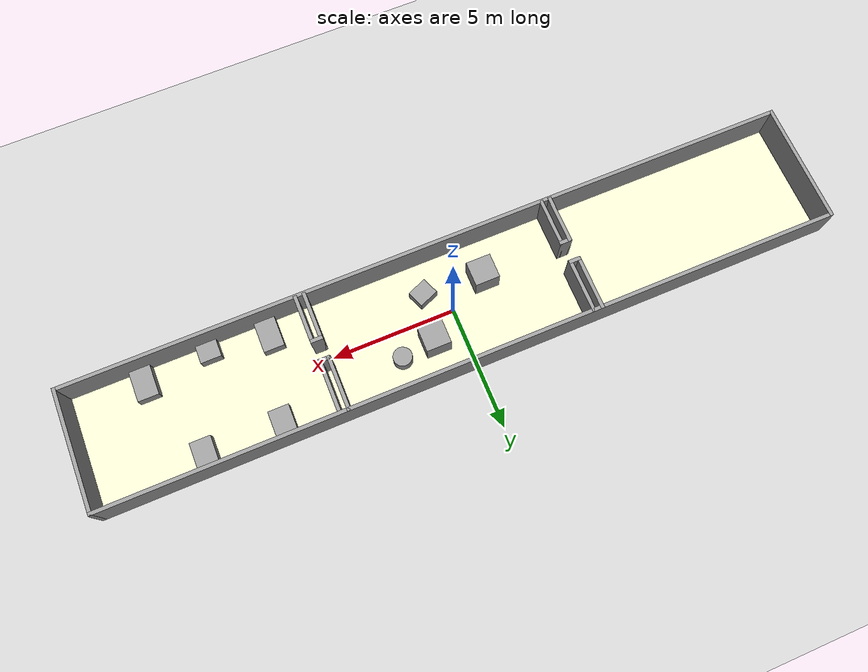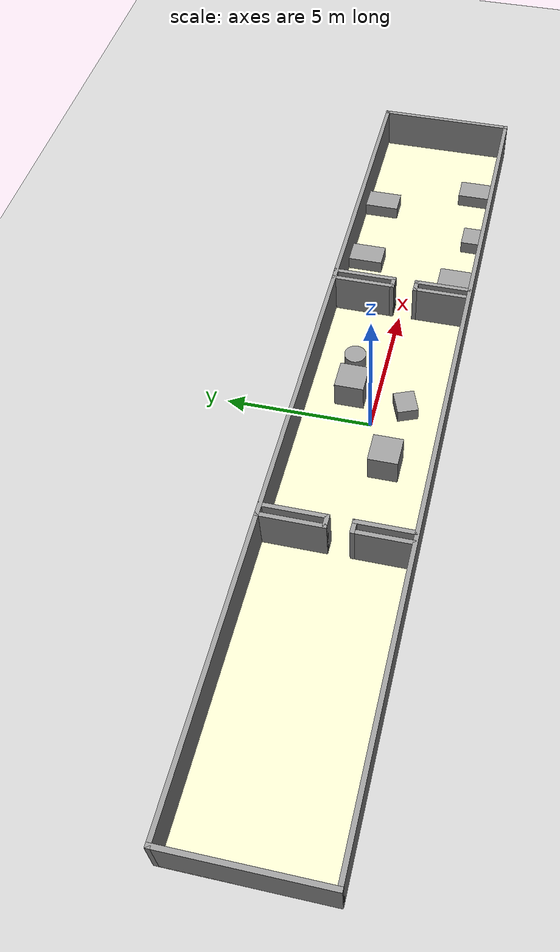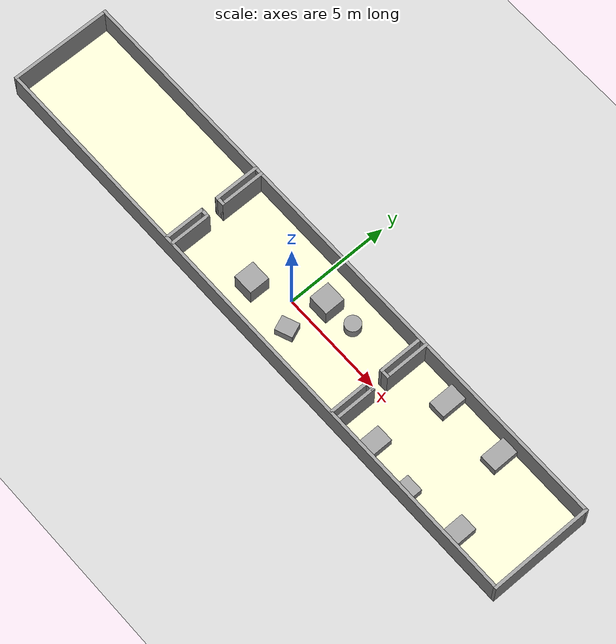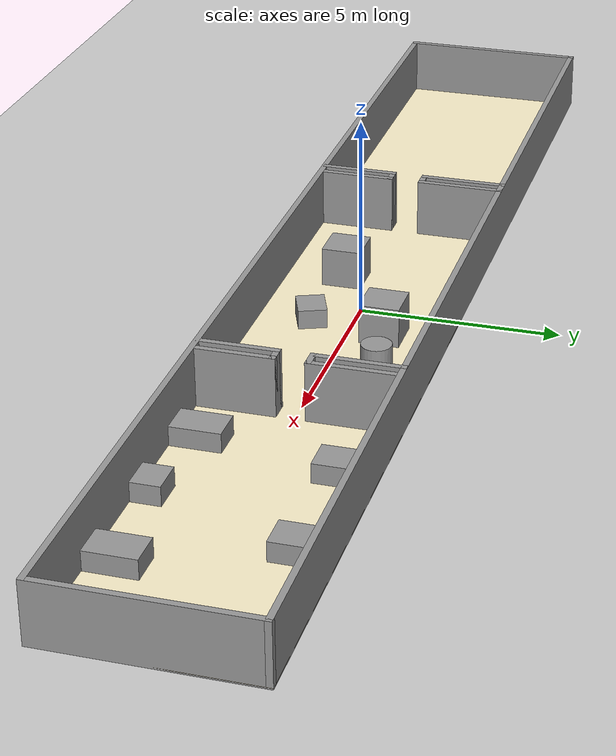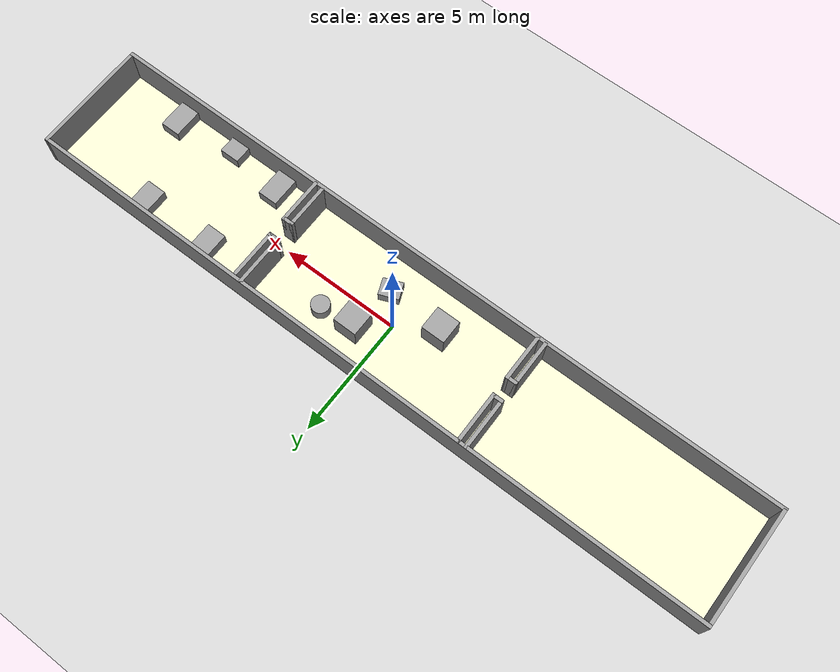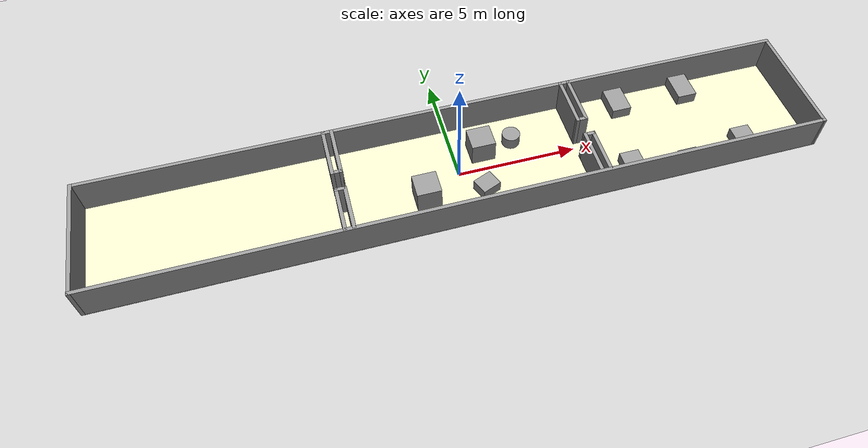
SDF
<sdf version="1.7">
 <world name="default">
  <scene><ambient>0.4 0.4 0.4 1</ambient><background>0.7 0.7 0.7 1</background><shadows>0</shadows></scene>
  <light name="sun" type="directional">
   <cast_shadows>0</cast_shadows>
   <pose>0 0 10 0 -0 0</pose>
   <diffuse>0.6 0.6 0.6 1</diffuse>
   <specular>0.1 0.1 0.1 1</specular>
   <attenuation>
    <range>1000</range>
    <constant>0.9</constant>
    <linear>0.01</linear>
    <quadratic>0.001</quadratic>
   </attenuation>
   <direction>-0.5 0.1 -0.5</direction>
   <spot><inner_angle>0</inner_angle><outer_angle>0</outer_angle><falloff>0</falloff></spot>
  </light>
  <model name="ground_plane">
   <static>1</static>
   <link name="link">
    <collision name="collision">
     <geometry><plane><normal>0 0 1</normal><size>100 100</size></plane></geometry>
     <surface><friction><ode><mu>100</mu><mu2>50</mu2></ode></friction></surface>
    </collision>
    <visual name="visual">
     <cast_shadows>0</cast_shadows>
     <geometry><plane><normal>0 0 1</normal><size>100 100</size></plane></geometry>
     <material>
      <script><uri>file://media/materials/scripts/gazebo.material</uri><name>Gazebo/Grey</name></script>
     </material>
    </visual>
   </link>
  </model>
  <gravity>0 0 -9.8</gravity>
  <magnetic_field>6e-06 2.3e-05 -4.2e-05</magnetic_field>
  <atmosphere type="adiabatic"/>
  <physics name="default_physics" default="0" type="ode">
   <max_step_size>0.001</max_step_size>
   <real_time_factor>1</real_time_factor>
   <real_time_update_rate>1000</real_time_update_rate>
  </physics>
  <scene><ambient>0.4 0.4 0.4 1</ambient><background>0.7 0.7 0.7 1</background><shadows>1</shadows></scene>
  <audio><device>default</device></audio>
  <spherical_coordinates>
   <surface_model>EARTH_WGS84</surface_model>
   <latitude_deg>0</latitude_deg>
   <longitude_deg>0</longitude_deg>
   <elevation>0</elevation>
   <heading_deg>0</heading_deg>
  </spherical_coordinates>
  <model name="exp_empty_rooms">
   <pose>-0.0311 0.006065 0 0 -0 0</pose>
   <link name="floor">
    <collision name="floor_collision">
     <geometry><box><size>30 5 0.01</size></box></geometry>
     <pose>0 0 0.005 0 -0 0</pose>
     <surface><friction><ode><mu>100</mu><mu2>50</mu2></ode></friction></surface>
    </collision>
    <visual name="floor_visual">
     <geometry><box><size>30 5 0.01</size></box></geometry>
     <pose>0 0 0.005 0 -0 0</pose>
     <material>
      <ambient>0.98 0.933 0.792 1</ambient>
      <diffuse>0.98 0.933 0.792 1</diffuse>
      <specular>0.1 0.1 0.1 1</specular>
      <emissive>0 0 0 0</emissive>
     </material>
    </visual>
   </link>
   <link name="Wall_0">
    <collision name="Wall_0_Collision">
     <geometry><box><size>5 0.15 2.5</size></box></geometry>
     <pose>0 0 0.25 0 -0 0</pose>
    </collision>
    <visual name="Wall_0_Visual">
     <pose>0 0 0.25 0 -0 0</pose>
     <geometry><box><size>5 0.15 2.5</size></box></geometry>
     <material>
      <script><uri>file://media/materials/scripts/gazebo.material</uri><name>Gazebo/Grey</name></script>
      <ambient>1 1 1 1</ambient>
     </material>
     <meta><layer>0</layer></meta>
    </visual>
    <pose>-14.925 0 0 0 -0 -1.5708</pose>
   </link>
   <link name="Wall_1">
    <collision name="Wall_1_Collision">
     <geometry><box><size>30 0.15 2.5</size></box></geometry>
     <pose>0 0 0.25 0 -0 0</pose>
    </collision>
    <visual name="Wall_1_Visual">
     <pose>0 0 0.25 0 -0 0</pose>
     <geometry><box><size>30 0.15 2.5</size></box></geometry>
     <material>
      <script><uri>file://media/materials/scripts/gazebo.material</uri><name>Gazebo/Grey</name></script>
      <ambient>1 1 1 1</ambient>
     </material>
     <meta><layer>0</layer></meta>
    </visual>
    <pose>0 -2.425 0 0 -0 0</pose>
   </link>
   <link name="Wall_10">
    <collision name="Wall_10_Collision">
     <geometry><box><size>2.25 0.15 2.5</size></box></geometry>
     <pose>0 0 0.25 0 -0 0</pose>
    </collision>
    <visual name="Wall_10_Visual">
     <pose>0 0 0.25 0 -0 0</pose>
     <geometry><box><size>2.25 0.15 2.5</size></box></geometry>
     <material>
      <script><uri>file://media/materials/scripts/gazebo.material</uri><name>Gazebo/Grey</name></script>
      <ambient>1 1 1 1</ambient>
     </material>
     <meta><layer>0</layer></meta>
    </visual>
    <pose>-5.055 1.375 0 0 -0 -1.5708</pose>
   </link>
   <link name="Wall_11">
    <collision name="Wall_11_Collision">
     <geometry><box><size>0.5 0.15 2.5</size></box></geometry>
     <pose>0 0 0.25 0 -0 0</pose>
    </collision>
    <visual name="Wall_11_Visual">
     <pose>0 0 0.25 0 -0 0</pose>
     <geometry><box><size>0.5 0.15 2.5</size></box></geometry>
     <material>
      <script><uri>file://media/materials/scripts/gazebo.material</uri><name>Gazebo/Grey</name></script>
      <ambient>1 1 1 1</ambient>
     </material>
     <meta><layer>0</layer></meta>
    </visual>
    <pose>-4.88 0.325 0 0 -0 0</pose>
   </link>
   <link name="Wall_12">
    <collision name="Wall_12_Collision">
     <geometry><box><size>2.25 0.15 2.5</size></box></geometry>
     <pose>0 0 0.25 0 -0 0</pose>
    </collision>
    <visual name="Wall_12_Visual">
     <pose>0 0 0.25 0 -0 0</pose>
     <geometry><box><size>2.25 0.15 2.5</size></box></geometry>
     <material>
      <script><uri>file://media/materials/scripts/gazebo.material</uri><name>Gazebo/Grey</name></script>
      <ambient>1 1 1 1</ambient>
     </material>
     <meta><layer>0</layer></meta>
    </visual>
    <pose>-4.705 1.375 0 0 -0 1.5708</pose>
   </link>
   <link name="Wall_16">
    <collision name="Wall_16_Collision">
     <geometry><box><size>0.5 0.15 2.5</size></box></geometry>
     <pose>0 0 0.25 0 -0 0</pose>
    </collision>
    <visual name="Wall_16_Visual">
     <pose>0 0 0.25 0 -0 0</pose>
     <geometry><box><size>0.5 0.15 2.5</size></box></geometry>
     <material>
      <script><uri>file://media/materials/scripts/gazebo.material</uri><name>Gazebo/Grey</name></script>
      <ambient>1 1 1 1</ambient>
     </material>
     <meta><layer>0</layer></meta>
    </visual>
    <pose>-4.88 -0.525 0 0 -0 0</pose>
   </link>
   <link name="Wall_17">
    <collision name="Wall_17_Collision">
     <geometry><box><size>2 0.15 2.5</size></box></geometry>
     <pose>0 0 0.25 0 -0 0</pose>
    </collision>
    <visual name="Wall_17_Visual">
     <pose>0 0 0.25 0 -0 0</pose>
     <geometry><box><size>2 0.15 2.5</size></box></geometry>
     <material>
      <script><uri>file://media/materials/scripts/gazebo.material</uri><name>Gazebo/Grey</name></script>
      <ambient>1 1 1 1</ambient>
     </material>
     <meta><layer>0</layer></meta>
    </visual>
    <pose>-4.705 -1.45 0 0 -0 -1.5708</pose>
   </link>
   <link name="Wall_19">
    <collision name="Wall_19_Collision">
     <geometry><box><size>2 0.15 2.5</size></box></geometry>
     <pose>0 0 0.25 0 -0 0</pose>
    </collision>
    <visual name="Wall_19_Visual">
     <pose>0 0 0.25 0 -0 0</pose>
     <geometry><box><size>2 0.15 2.5</size></box></geometry>
     <material>
      <script><uri>file://media/materials/scripts/gazebo.material</uri><name>Gazebo/Grey</name></script>
      <ambient>1 1 1 1</ambient>
     </material>
     <meta><layer>0</layer></meta>
    </visual>
    <pose>-5.055 -1.45 0 0 -0 -1.5708</pose>
   </link>
   <link name="Wall_2">
    <collision name="Wall_2_Collision">
     <geometry><box><size>5 0.15 2.5</size></box></geometry>
     <pose>0 0 0.25 0 -0 0</pose>
    </collision>
    <visual name="Wall_2_Visual">
     <pose>0 0 0.25 0 -0 0</pose>
     <geometry><box><size>5 0.15 2.5</size></box></geometry>
     <material>
      <script><uri>file://media/materials/scripts/gazebo.material</uri><name>Gazebo/Grey</name></script>
      <ambient>1 1 1 1</ambient>
     </material>
     <meta><layer>0</layer></meta>
    </visual>
    <pose>14.925 0 0 0 -0 1.5708</pose>
   </link>
   <link name="Wall_3">
    <collision name="Wall_3_Collision">
     <geometry><box><size>30 0.15 2.5</size></box></geometry>
     <pose>0 0 0.25 0 -0 0</pose>
    </collision>
    <visual name="Wall_3_Visual">
     <pose>0 0 0.25 0 -0 0</pose>
     <geometry><box><size>30 0.15 2.5</size></box></geometry>
     <material>
      <script><uri>file://media/materials/scripts/gazebo.material</uri><name>Gazebo/Grey</name></script>
      <ambient>1 1 1 1</ambient>
     </material>
     <meta><layer>0</layer></meta>
    </visual>
    <pose>0 2.425 0 0 -0 3.14159</pose>
   </link>
   <link name="Wall_38">
    <collision name="Wall_38_Collision">
     <geometry><box><size>2 0.15 2.5</size></box></geometry>
     <pose>0 0 0.25 0 -0 0</pose>
    </collision>
    <visual name="Wall_38_Visual">
     <pose>0 0 0.25 0 -0 0</pose>
     <geometry><box><size>2 0.15 2.5</size></box></geometry>
     <material>
      <script><uri>file://media/materials/scripts/gazebo.material</uri><name>Gazebo/Grey</name></script>
      <ambient>1 1 1 1</ambient>
     </material>
     <meta><layer>0</layer></meta>
    </visual>
    <pose>5.185 -1.44 0 0 -0 -1.5708</pose>
   </link>
   <link name="Wall_43">
    <collision name="Wall_43_Collision">
     <geometry><box><size>0.5 0.15 2.5</size></box></geometry>
     <pose>0 0 0.25 0 -0 0</pose>
    </collision>
    <visual name="Wall_43_Visual">
     <pose>0 0 0.25 0 -0 0</pose>
     <geometry><box><size>0.5 0.15 2.5</size></box></geometry>
     <material>
      <script><uri>file://media/materials/scripts/gazebo.material</uri><name>Gazebo/Grey</name></script>
      <ambient>1 1 1 1</ambient>
     </material>
     <meta><layer>0</layer></meta>
    </visual>
    <pose>5.36 -0.515 0 0 -0 0</pose>
   </link>
   <link name="Wall_44">
    <collision name="Wall_44_Collision">
     <geometry><box><size>2 0.15 2.5</size></box></geometry>
     <pose>0 0 0.25 0 -0 0</pose>
    </collision>
    <visual name="Wall_44_Visual">
     <pose>0 0 0.25 0 -0 0</pose>
     <geometry><box><size>2 0.15 2.5</size></box></geometry>
     <material>
      <script><uri>file://media/materials/scripts/gazebo.material</uri><name>Gazebo/Grey</name></script>
      <ambient>1 1 1 1</ambient>
     </material>
     <meta><layer>0</layer></meta>
    </visual>
    <pose>5.535 -1.44 0 0 -0 -1.5708</pose>
   </link>
   <link name="Wall_47">
    <collision name="Wall_47_Collision">
     <geometry><box><size>2.25 0.15 2.5</size></box></geometry>
     <pose>0 0 0.25 0 -0 0</pose>
    </collision>
    <visual name="Wall_47_Visual">
     <pose>0 0 0.25 0 -0 0</pose>
     <geometry><box><size>2.25 0.15 2.5</size></box></geometry>
     <material>
      <script><uri>file://media/materials/scripts/gazebo.material</uri><name>Gazebo/Grey</name></script>
      <ambient>1 1 1 1</ambient>
     </material>
     <meta><layer>0</layer></meta>
    </visual>
    <pose>5.175 1.365 0 0 -0 1.5708</pose>
   </link>
   <link name="Wall_49">
    <collision name="Wall_49_Collision">
     <geometry><box><size>0.5 0.15 2.5</size></box></geometry>
     <pose>0 0 0.25 0 -0 0</pose>
    </collision>
    <visual name="Wall_49_Visual">
     <pose>0 0 0.25 0 -0 0</pose>
     <geometry><box><size>0.5 0.15 2.5</size></box></geometry>
     <material>
      <script><uri>file://media/materials/scripts/gazebo.material</uri><name>Gazebo/Grey</name></script>
      <ambient>1 1 1 1</ambient>
     </material>
     <meta><layer>0</layer></meta>
    </visual>
    <pose>5.35 0.315 0 0 -0 0</pose>
   </link>
   <link name="Wall_51">
    <collision name="Wall_51_Collision">
     <geometry><box><size>2.25 0.15 2.5</size></box></geometry>
     <pose>0 0 0.25 0 -0 0</pose>
    </collision>
    <visual name="Wall_51_Visual">
     <pose>0 0 0.25 0 -0 0</pose>
     <geometry><box><size>2.25 0.15 2.5</size></box></geometry>
     <material>
      <script><uri>file://media/materials/scripts/gazebo.material</uri><name>Gazebo/Grey</name></script>
      <ambient>1 1 1 1</ambient>
     </material>
     <meta><layer>0</layer></meta>
    </visual>
    <pose>5.525 1.365 0 0 -0 1.5708</pose>
   </link>
   <static>1</static>
  </model>
  <model name="unit_box_clone_clone">
   <pose>0.86717 -1.02126 0.253065 0 -0 0.381073</pose>
   <link name="link">
    <inertial>
     <mass>1</mass>
     <inertia>
      <ixx>0.166667</ixx>
      <ixy>0</ixy>
      <ixz>0</ixz>
      <iyy>0.166667</iyy>
      <iyz>0</iyz>
      <izz>0.166667</izz>
     </inertia>
    </inertial>
    <collision name="collision">
     <geometry><box><size>0.832545 0.712184 0.486131</size></box></geometry>
    </collision>
    <visual name="visual">
     <geometry><box><size>0.832545 0.712184 0.486131</size></box></geometry>
     <material>
      <script><name>Gazebo/Grey</name><uri>file://media/materials/scripts/gazebo.material</uri></script>
     </material>
    </visual>
   </link>
  </model>
  <model name="unit_box_clone_clone_2_clone">
   <pose>9.34147 -1.9802 0.253065 -0 -0 -3e-06</pose>
   <link name="link">
    <inertial>
     <mass>1</mass>
     <inertia>
      <ixx>0.166667</ixx>
      <ixy>0</ixy>
      <ixz>0</ixz>
      <iyy>0.166667</iyy>
      <iyz>0</iyz>
      <izz>0.166667</izz>
     </inertia>
    </inertial>
    <collision name="collision"><geometry><box><size>0.832545 0.71218 0.486131</size></box></geometry></collision>
    <visual name="visual">
     <geometry><box><size>0.832545 0.71218 0.486131</size></box></geometry>
     <material>
      <script><name>Gazebo/Grey</name><uri>file://media/materials/scripts/gazebo.material</uri></script>
     </material>
    </visual>
   </link>
  </model>
  <model name="unit_box_clone_clone_2_clone_clone">
   <pose>6.96963 -1.72255 0.253065 0 -0 -3e-06</pose>
   <link name="link">
    <inertial>
     <mass>1</mass>
     <inertia>
      <ixx>0.166667</ixx>
      <ixy>0</ixy>
      <ixz>0</ixz>
      <iyy>0.166667</iyy>
      <iyz>0</iyz>
      <izz>0.166667</izz>
     </inertia>
    </inertial>
    <collision name="collision"><geometry><box><size>0.832545 1.22961 0.486131</size></box></geometry></collision>
    <visual name="visual">
     <geometry><box><size>0.832545 1.22961 0.486131</size></box></geometry>
     <material>
      <script><name>Gazebo/Grey</name><uri>file://media/materials/scripts/gazebo.material</uri></script>
     </material>
    </visual>
   </link>
  </model>
  <model name="unit_box_clone_clone_2_clone_clone_clone">
   <pose>10.6858 1.74123 0.253065 0 -0 -2e-06</pose>
   <link name="link">
    <inertial>
     <mass>1</mass>
     <inertia>
      <ixx>0.166667</ixx>
      <ixy>0</ixy>
      <ixz>0</ixz>
      <iyy>0.166667</iyy>
      <iyz>0</iyz>
      <izz>0.166667</izz>
     </inertia>
    </inertial>
    <collision name="collision"><geometry><box><size>0.832545 1.22961 0.486131</size></box></geometry></collision>
    <visual name="visual">
     <geometry><box><size>0.832545 1.22961 0.486131</size></box></geometry>
     <material>
      <script><name>Gazebo/Grey</name><uri>file://media/materials/scripts/gazebo.material</uri></script>
     </material>
    </visual>
   </link>
  </model>
  <model name="unit_box_clone_clone_2_clone_clone_clone_0">
   <pose>11.9853 -1.72376 0.253065 0 -0 -3e-06</pose>
   <link name="link">
    <inertial>
     <mass>1</mass>
     <inertia>
      <ixx>0.166667</ixx>
      <ixy>0</ixy>
      <ixz>0</ixz>
      <iyy>0.166667</iyy>
      <iyz>0</iyz>
      <izz>0.166667</izz>
     </inertia>
    </inertial>
    <collision name="collision"><geometry><box><size>0.832545 1.22961 0.486131</size></box></geometry></collision>
    <visual name="visual">
     <geometry><box><size>0.832545 1.22961 0.486131</size></box></geometry>
     <material>
      <script><name>Gazebo/Grey</name><uri>file://media/materials/scripts/gazebo.material</uri></script>
     </material>
    </visual>
   </link>
  </model>
  <model name="unit_box_clone_clone_2_clone_clone_clone_1">
   <pose>7.60902 1.74123 0.253065 0 -0 -3e-06</pose>
   <link name="link">
    <inertial>
     <mass>1</mass>
     <inertia>
      <ixx>0.166667</ixx>
      <ixy>0</ixy>
      <ixz>0</ixz>
      <iyy>0.166667</iyy>
      <iyz>0</iyz>
      <izz>0.166667</izz>
     </inertia>
    </inertial>
    <collision name="collision"><geometry><box><size>0.832545 1.22961 0.486131</size></box></geometry></collision>
    <visual name="visual">
     <geometry><box><size>0.832545 1.22961 0.486131</size></box></geometry>
     <material>
      <script><name>Gazebo/Grey</name><uri>file://media/materials/scripts/gazebo.material</uri></script>
     </material>
    </visual>
   </link>
  </model>
  <model name="unit_cylinder">
   <pose>2.55137 1.08869 0.274427 -0 -0 -1.7e-05</pose>
   <link name="link">
    <inertial>
     <mass>1</mass>
     <inertia><ixx>0.145833</ixx><ixy>0</ixy><ixz>0</ixz><iyy>0.145833</iyy><iyz>0</iyz><izz>0.125</izz></inertia>
    </inertial>
    <collision name="collision">
     <geometry><cylinder><radius>0.378871</radius><length>0.528855</length></cylinder></geometry>
    </collision>
    <visual name="visual">
     <geometry><cylinder><radius>0.378871</radius><length>0.528855</length></cylinder></geometry>
     <material>
      <script><name>Gazebo/Grey</name><uri>file://media/materials/scripts/gazebo.material</uri></script>
     </material>
    </visual>
   </link>
  </model>
  <model name="unit_box">
   <pose>1.157 0.895022 0.51 0 -0 1e-06</pose>
   <link name="link">
    <inertial>
     <mass>1</mass>
     <inertia>
      <ixx>0.166667</ixx>
      <ixy>0</ixy>
      <ixz>0</ixz>
      <iyy>0.166667</iyy>
      <iyz>0</iyz>
      <izz>0.166667</izz>
     </inertia>
    </inertial>
    <collision name="collision"><geometry><box><size>1 1 1</size></box></geometry></collision>
    <visual name="visual">
     <geometry><box><size>1 1 1</size></box></geometry>
     <material>
      <script><name>Gazebo/Grey</name><uri>file://media/materials/scripts/gazebo.material</uri></script>
     </material>
    </visual>
   </link>
  </model>
  <model name="unit_box_0">
   <pose>-1.58413 -0.822219 0.51 -0 -0 -0</pose>
   <link name="link">
    <inertial>
     <mass>1</mass>
     <inertia>
      <ixx>0.166667</ixx>
      <ixy>0</ixy>
      <ixz>0</ixz>
      <iyy>0.166667</iyy>
      <iyz>0</iyz>
      <izz>0.166667</izz>
     </inertia>
    </inertial>
    <collision name="collision"><geometry><box><size>1 1 1</size></box></geometry></collision>
    <visual name="visual">
     <geometry><box><size>1 1 1</size></box></geometry>
     <material>
      <script><name>Gazebo/Grey</name><uri>file://media/materials/scripts/gazebo.material</uri></script>
     </material>
    </visual>
   </link>
  </model>
 </world>
</sdf>
